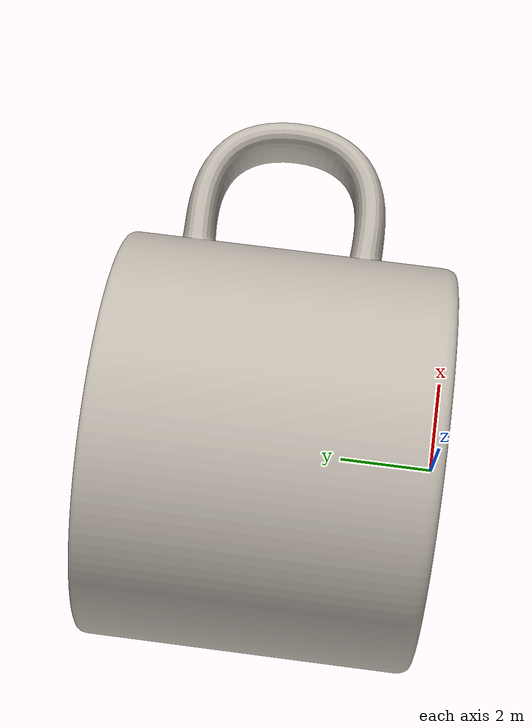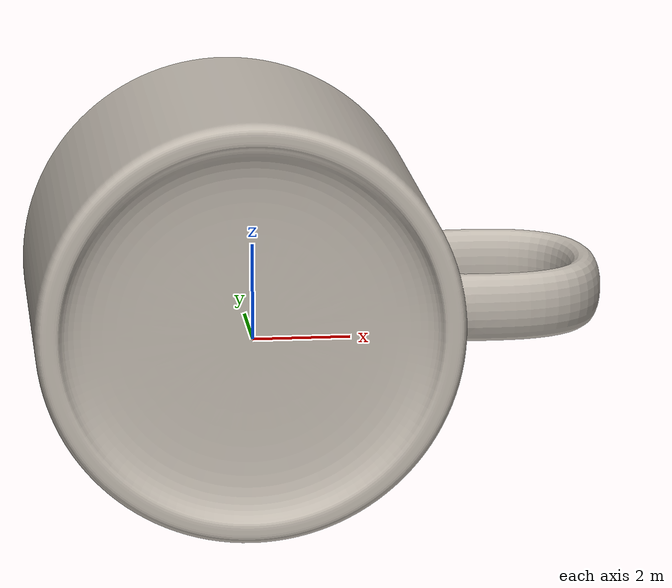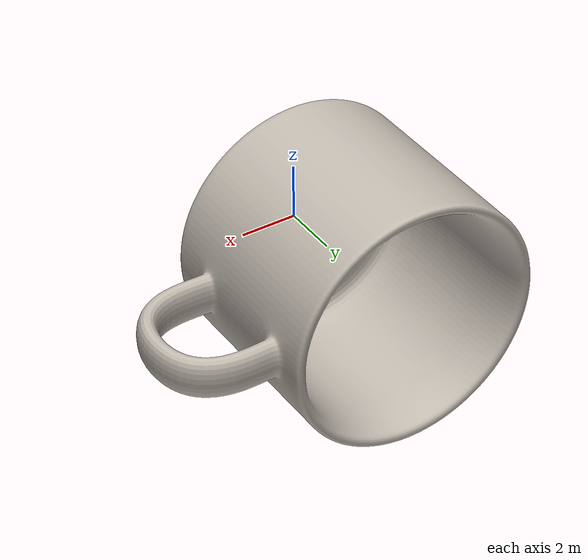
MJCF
<mujoco model="mug">
  <default>
    <default class="visual">
      <geom group="1" type="mesh" contype="0" conaffinity="0"/>
    </default>
    <default class="collision">
      <geom group="0" type="mesh"/>
    </default>
  </default>
  <asset>
    <texture type="2d" name="texture" file="texture.png"/>
    <material name="material_0" texture="texture" specular="0.5" shininess="0.5"/>
    <mesh name="mug" file="mug.obj"/>
  </asset>
  <worldbody>
    <body>
      <body name="object">
        <geom material="material_0" mesh="mug" class="visual"/>
        <geom mesh="mug" class="collision"/>
      </body>
    </body>
  </worldbody>
</mujoco>
